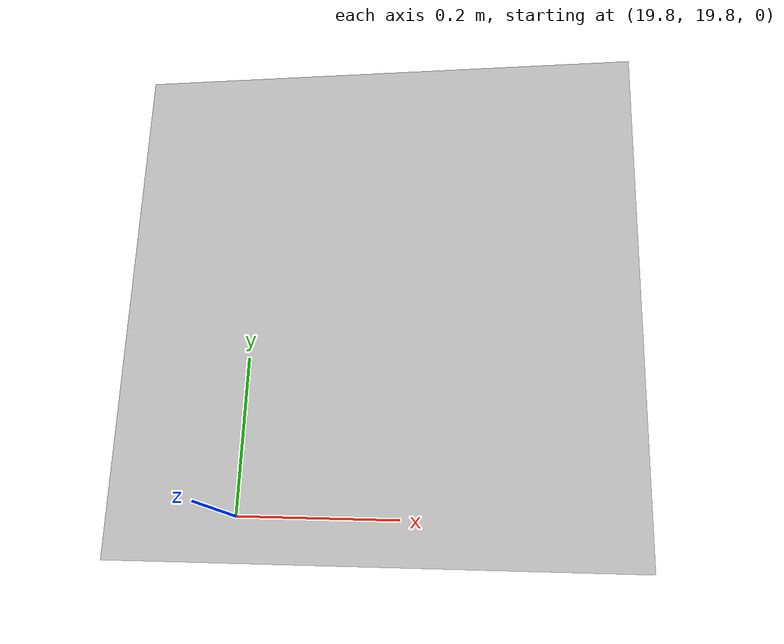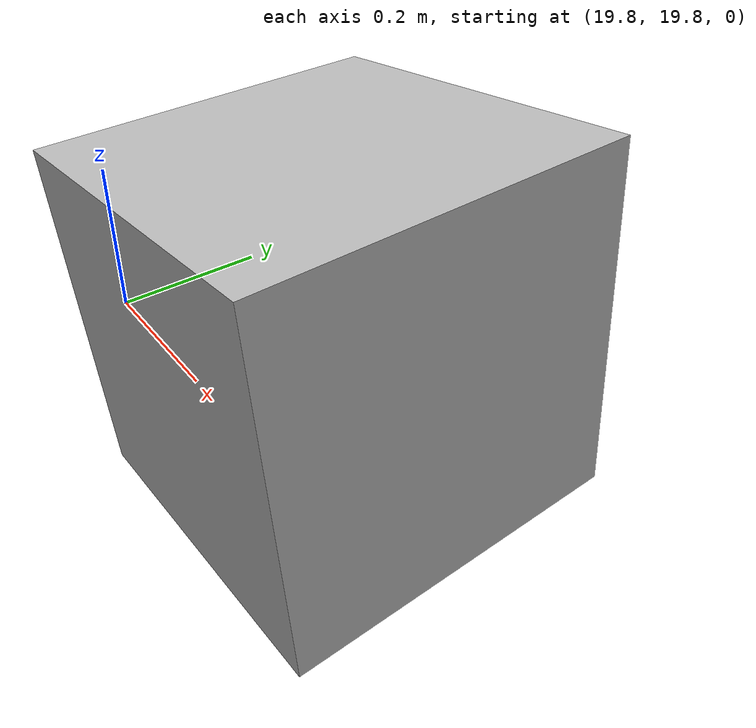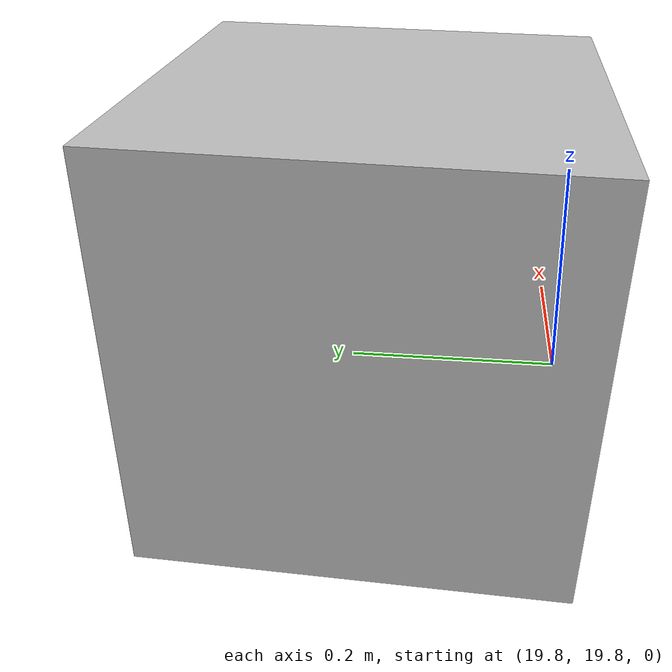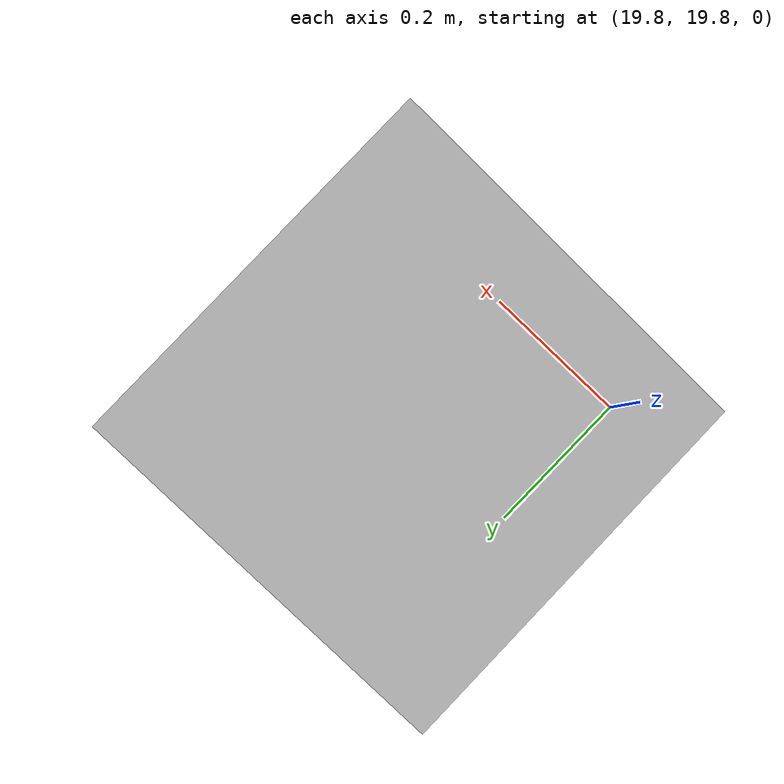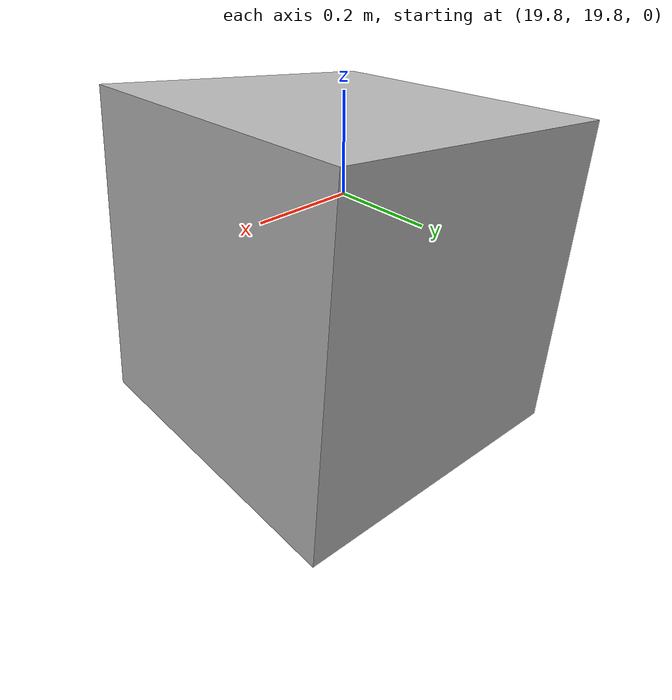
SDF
<?xml version="1.0"?>
<sdf version="1.4">

  <world name="cholessy-wiltshire-default-world">
    <include>
      <uri>model://sun</uri>
    </include>

<!-- ############################################################ Rendering-->
<gui>
     <camera name="default_camera_view">
       <pose>10 0 10 -1.57 1.57 0</pose>
     </camera>
</gui>
<!-- ############################################################ BASE physics -->
<gravity>0 0 0</gravity>
<magnetic_field>0 0 0</magnetic_field>
<physics name='default_physics' type='ode'>
  <ode>
        <solver>
          <type>world</type>
        </solver>
        <constraints>
          <contact_max_correcting_vel>0.1</contact_max_correcting_vel>
          <contact_surface_layer>0.0001</contact_surface_layer>
        </constraints>
      </ode>
</physics>
<!-- ############################################################ ISS model -->

<!-- ############################################################ Satellite model -->
  <model name="robosat">
    <pose> 20 20 0  0.028249999999999997 -0.11299999999999999 0</pose>
       <link name="base_link">

          <gravity>0</gravity>
         <inertial>
          <mass>2</mass>
        </inertial>
         <collision name="collision">
           <geometry>
             <box>
               <size>.5 .5 .5</size>
             </box>
           </geometry>
         </collision>

         <visual name="visual">
           <geometry>
             <box>
               <size>.5 .5 .5</size>
             </box>
           </geometry>
         </visual>
       </link>

  </model>
<!-- Plugin with neutral physiscs-->
<plugin name="cholessy_wiltshire_world" filename="libcholessy_wiltshire.so"/>

</world>
</sdf>
